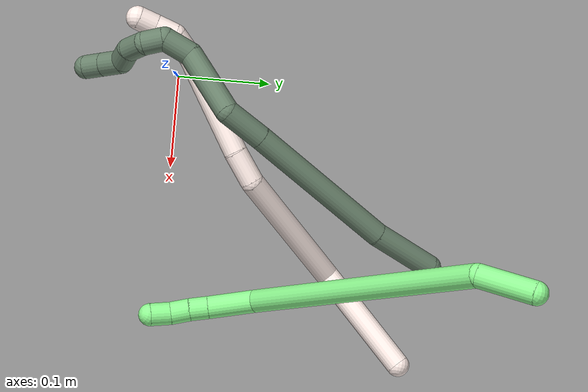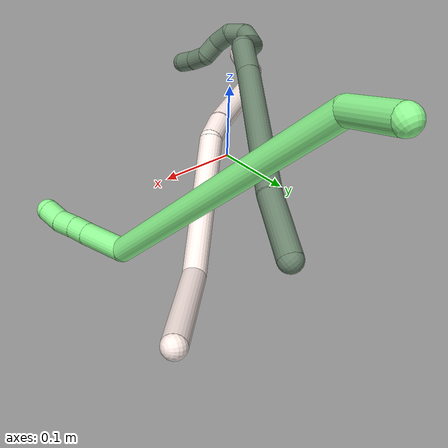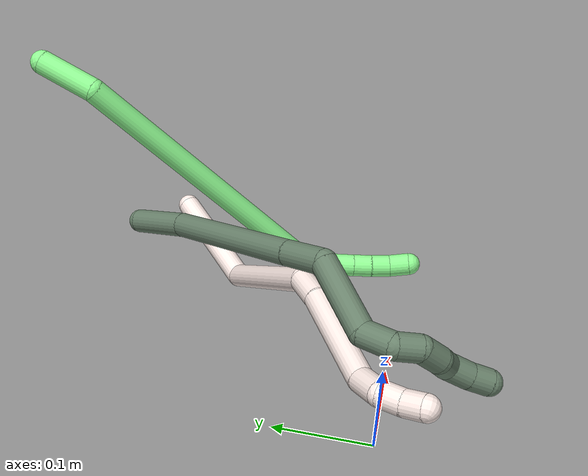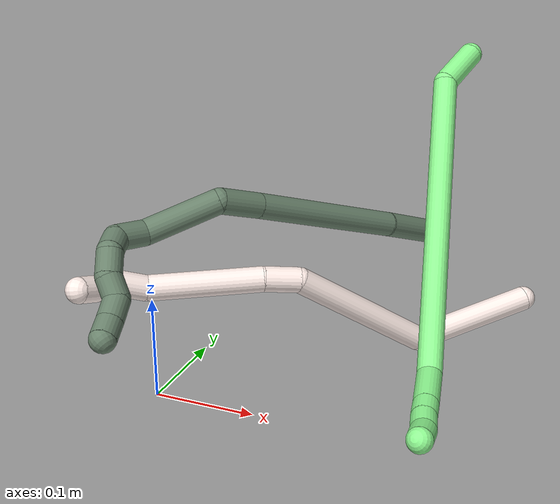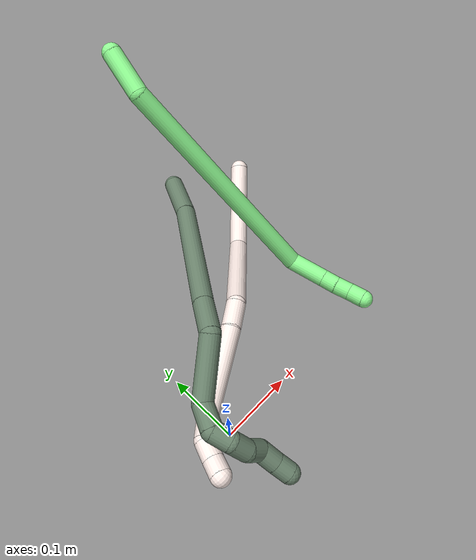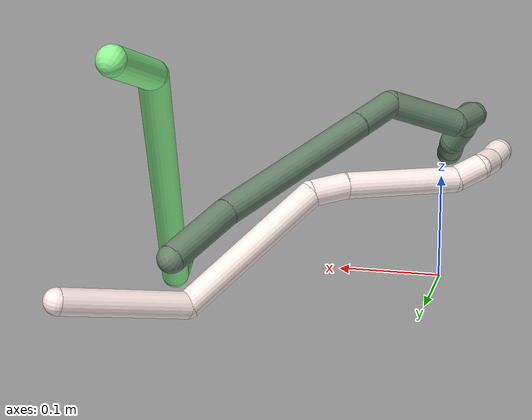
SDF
<sdf version="1.7">
 <world name="default">
  <model name="11">
   <static>0</static>
   <link name="11">
    <collision name="collision-cylinder-e_1_1_4">
     <pose>-0.024633 -0.038244 -0.043238 2.41741 -0.40333 -0.989841</pose>
     <geometry><cylinder><radius>0.0125</radius><length>0.125521</length></cylinder></geometry>
     <surface>
      <friction><ode><mu>1.16</mu><mu2>1.16</mu2><slip1>0</slip1><slip2>0</slip2></ode></friction>
      <contact><ode><kp>1e+06</kp><kd>1</kd><max_vel>0</max_vel><min_depth>0.001</min_depth></ode></contact>
     </surface>
    </collision>
    <visual name="visual-cylinder-e_1_1_4">
     <pose>-0.024633 -0.038244 -0.043238 2.41741 -0.40333 -0.989841</pose>
     <geometry><cylinder><radius>0.0125</radius><length>0.125521</length></cylinder></geometry>
     <material><ambient>1 0.933333 0.909804 1</ambient></material>
    </visual>
    <collision name="collision-cylinder-e_2_4_5">
     <pose>-0.119415 -0.084193 -0.119824 2.91453 -1.11688 -2.78057</pose>
     <geometry><cylinder><radius>0.0125</radius><length>0.156108</length></cylinder></geometry>
     <surface>
      <friction><ode><mu>1.16</mu><mu2>1.16</mu2><slip1>0</slip1><slip2>0</slip2></ode></friction>
      <contact><ode><kp>1e+06</kp><kd>1</kd><max_vel>0</max_vel><min_depth>0.001</min_depth></ode></contact>
     </surface>
    </collision>
    <visual name="visual-cylinder-e_2_4_5">
     <pose>-0.119415 -0.084193 -0.119824 2.91453 -1.11688 -2.78057</pose>
     <geometry><cylinder><radius>0.0125</radius><length>0.156108</length></cylinder></geometry>
     <material><ambient>1 0.933333 0.909804 1</ambient></material>
    </visual>
    <collision name="collision-cylinder-e_3_5_6">
     <pose>-0.20006 -0.09764 -0.166163 2.72538 -0.636365 -2.00141</pose>
     <geometry><cylinder><radius>0.0125</radius><length>0.035321</length></cylinder></geometry>
     <surface>
      <friction><ode><mu>1.16</mu><mu2>1.16</mu2><slip1>0</slip1><slip2>0</slip2></ode></friction>
      <contact><ode><kp>1e+06</kp><kd>1</kd><max_vel>0</max_vel><min_depth>0.001</min_depth></ode></contact>
     </surface>
    </collision>
    <visual name="visual-cylinder-e_3_5_6">
     <pose>-0.20006 -0.09764 -0.166163 2.72538 -0.636365 -2.00141</pose>
     <geometry><cylinder><radius>0.0125</radius><length>0.035321</length></cylinder></geometry>
     <material><ambient>1 0.933333 0.909804 1</ambient></material>
    </visual>
    <collision name="collision-cylinder-e_4_6_7">
     <pose>-0.236167 -0.123463 -0.223817 2.71908 -0.481877 -1.70643</pose>
     <geometry><cylinder><radius>0.0125</radius><length>0.110525</length></cylinder></geometry>
     <surface>
      <friction><ode><mu>1.16</mu><mu2>1.16</mu2><slip1>0</slip1><slip2>0</slip2></ode></friction>
      <contact><ode><kp>1e+06</kp><kd>1</kd><max_vel>0</max_vel><min_depth>0.001</min_depth></ode></contact>
     </surface>
    </collision>
    <visual name="visual-cylinder-e_4_6_7">
     <pose>-0.236167 -0.123463 -0.223817 2.71908 -0.481877 -1.70643</pose>
     <geometry><cylinder><radius>0.0125</radius><length>0.110525</length></cylinder></geometry>
     <material><ambient>1 0.933333 0.909804 1</ambient></material>
    </visual>
    <collision name="collision-cylinder-e_5_7_8">
     <pose>-0.272903 -0.147415 -0.277246 2.7256 -0.859768 -2.27878</pose>
     <geometry><cylinder><radius>0.0125</radius><length>0.029367</length></cylinder></geometry>
     <surface>
      <friction><ode><mu>1.16</mu><mu2>1.16</mu2><slip1>0</slip1><slip2>0</slip2></ode></friction>
      <contact><ode><kp>1e+06</kp><kd>1</kd><max_vel>0</max_vel><min_depth>0.001</min_depth></ode></contact>
     </surface>
    </collision>
    <visual name="visual-cylinder-e_5_7_8">
     <pose>-0.272903 -0.147415 -0.277246 2.7256 -0.859768 -2.27878</pose>
     <geometry><cylinder><radius>0.0125</radius><length>0.029367</length></cylinder></geometry>
     <material><ambient>1 0.933333 0.909804 1</ambient></material>
    </visual>
    <collision name="collision-cylinder-e_6_8_9">
     <pose>-0.291785 -0.159152 -0.288911 1.92397 -0.746687 -1.02383</pose>
     <geometry><cylinder><radius>0.0125</radius><length>0.02284</length></cylinder></geometry>
     <surface>
      <friction><ode><mu>1.16</mu><mu2>1.16</mu2><slip1>0</slip1><slip2>0</slip2></ode></friction>
      <contact><ode><kp>1e+06</kp><kd>1</kd><max_vel>0</max_vel><min_depth>0.001</min_depth></ode></contact>
     </surface>
    </collision>
    <visual name="visual-cylinder-e_6_8_9">
     <pose>-0.291785 -0.159152 -0.288911 1.92397 -0.746687 -1.02383</pose>
     <geometry><cylinder><radius>0.0125</radius><length>0.02284</length></cylinder></geometry>
     <material><ambient>1 0.933333 0.909804 1</ambient></material>
    </visual>
    <collision name="collision-cylinder-e_7_9_2">
     <pose>-0.307688 -0.172777 -0.293723 1.89148 -0.930404 -1.21558</pose>
     <geometry><cylinder><radius>0.0125</radius><length>0.020317</length></cylinder></geometry>
     <surface>
      <friction><ode><mu>1.16</mu><mu2>1.16</mu2><slip1>0</slip1><slip2>0</slip2></ode></friction>
      <contact><ode><kp>1e+06</kp><kd>1</kd><max_vel>0</max_vel><min_depth>0.001</min_depth></ode></contact>
     </surface>
    </collision>
    <visual name="visual-cylinder-e_7_9_2">
     <pose>-0.307688 -0.172777 -0.293723 1.89148 -0.930404 -1.21558</pose>
     <geometry><cylinder><radius>0.0125</radius><length>0.020317</length></cylinder></geometry>
     <material><ambient>1 0.933333 0.909804 1</ambient></material>
    </visual>
    <collision name="collision-sphere-2">
     <pose>-0.315833 -0.178537 -0.295636 0 -0 0</pose>
     <geometry><sphere><radius>0.0125</radius></sphere></geometry>
     <surface>
      <friction><ode><mu>1.16</mu><mu2>1.16</mu2><slip1>0</slip1><slip2>0</slip2></ode></friction>
      <contact><ode><kp>1e+06</kp><kd>1</kd><max_vel>0</max_vel><min_depth>0.001</min_depth></ode></contact>
     </surface>
    </collision>
    <visual name="visual-sphere-2">
     <pose>-0.315833 -0.178537 -0.295636 0 -0 0</pose>
     <geometry><sphere><radius>0.0125</radius></sphere></geometry>
     <material><ambient>1 0.933333 0.909804 1</ambient></material>
    </visual>
    <collision name="collision-sphere-9">
     <pose>-0.299542 -0.167017 -0.29181 0 -0 0</pose>
     <geometry><sphere><radius>0.0125</radius></sphere></geometry>
     <surface>
      <friction><ode><mu>1.16</mu><mu2>1.16</mu2><slip1>0</slip1><slip2>0</slip2></ode></friction>
      <contact><ode><kp>1e+06</kp><kd>1</kd><max_vel>0</max_vel><min_depth>0.001</min_depth></ode></contact>
     </surface>
    </collision>
    <visual name="visual-sphere-9">
     <pose>-0.299542 -0.167017 -0.29181 0 -0 0</pose>
     <geometry><sphere><radius>0.0125</radius></sphere></geometry>
     <material><ambient>1 0.933333 0.909804 1</ambient></material>
    </visual>
    <collision name="collision-sphere-4">
     <pose>-0.049265 -0.076488 -0.086476 0 -0 0</pose>
     <geometry><sphere><radius>0.0125</radius></sphere></geometry>
     <surface>
      <friction><ode><mu>1.16</mu><mu2>1.16</mu2><slip1>0</slip1><slip2>0</slip2></ode></friction>
      <contact><ode><kp>1e+06</kp><kd>1</kd><max_vel>0</max_vel><min_depth>0.001</min_depth></ode></contact>
     </surface>
    </collision>
    <visual name="visual-sphere-4">
     <pose>-0.049265 -0.076488 -0.086476 0 -0 0</pose>
     <geometry><sphere><radius>0.0125</radius></sphere></geometry>
     <material><ambient>1 0.933333 0.909804 1</ambient></material>
    </visual>
    <collision name="collision-sphere-1">
     <geometry><sphere><radius>0.0125</radius></sphere></geometry>
     <surface>
      <friction><ode><mu>1.16</mu><mu2>1.16</mu2><slip1>0</slip1><slip2>0</slip2></ode></friction>
      <contact><ode><kp>1e+06</kp><kd>1</kd><max_vel>0</max_vel><min_depth>0.001</min_depth></ode></contact>
     </surface>
    </collision>
    <visual name="visual-sphere-1">
     <geometry><sphere><radius>0.0125</radius></sphere></geometry>
     <material><ambient>1 0.933333 0.909804 1</ambient></material>
    </visual>
    <collision name="collision-sphere-8">
     <pose>-0.284029 -0.151288 -0.286012 0 -0 0</pose>
     <geometry><sphere><radius>0.0125</radius></sphere></geometry>
     <surface>
      <friction><ode><mu>1.16</mu><mu2>1.16</mu2><slip1>0</slip1><slip2>0</slip2></ode></friction>
      <contact><ode><kp>1e+06</kp><kd>1</kd><max_vel>0</max_vel><min_depth>0.001</min_depth></ode></contact>
     </surface>
    </collision>
    <visual name="visual-sphere-8">
     <pose>-0.284029 -0.151288 -0.286012 0 -0 0</pose>
     <geometry><sphere><radius>0.0125</radius></sphere></geometry>
     <material><ambient>1 0.933333 0.909804 1</ambient></material>
    </visual>
    <collision name="collision-sphere-5">
     <pose>-0.189565 -0.091898 -0.153172 0 -0 0</pose>
     <geometry><sphere><radius>0.0125</radius></sphere></geometry>
     <surface>
      <friction><ode><mu>1.16</mu><mu2>1.16</mu2><slip1>0</slip1><slip2>0</slip2></ode></friction>
      <contact><ode><kp>1e+06</kp><kd>1</kd><max_vel>0</max_vel><min_depth>0.001</min_depth></ode></contact>
     </surface>
    </collision>
    <visual name="visual-sphere-5">
     <pose>-0.189565 -0.091898 -0.153172 0 -0 0</pose>
     <geometry><sphere><radius>0.0125</radius></sphere></geometry>
     <material><ambient>1 0.933333 0.909804 1</ambient></material>
    </visual>
    <collision name="collision-sphere-6">
     <pose>-0.210555 -0.103383 -0.179154 0 -0 0</pose>
     <geometry><sphere><radius>0.0125</radius></sphere></geometry>
     <surface>
      <friction><ode><mu>1.16</mu><mu2>1.16</mu2><slip1>0</slip1><slip2>0</slip2></ode></friction>
      <contact><ode><kp>1e+06</kp><kd>1</kd><max_vel>0</max_vel><min_depth>0.001</min_depth></ode></contact>
     </surface>
    </collision>
    <visual name="visual-sphere-6">
     <pose>-0.210555 -0.103383 -0.179154 0 -0 0</pose>
     <geometry><sphere><radius>0.0125</radius></sphere></geometry>
     <material><ambient>1 0.933333 0.909804 1</ambient></material>
    </visual>
    <collision name="collision-sphere-7">
     <pose>-0.261778 -0.143543 -0.268481 0 -0 0</pose>
     <geometry><sphere><radius>0.0125</radius></sphere></geometry>
     <surface>
      <friction><ode><mu>1.16</mu><mu2>1.16</mu2><slip1>0</slip1><slip2>0</slip2></ode></friction>
      <contact><ode><kp>1e+06</kp><kd>1</kd><max_vel>0</max_vel><min_depth>0.001</min_depth></ode></contact>
     </surface>
    </collision>
    <visual name="visual-sphere-7">
     <pose>-0.261778 -0.143543 -0.268481 0 -0 0</pose>
     <geometry><sphere><radius>0.0125</radius></sphere></geometry>
     <material><ambient>1 0.933333 0.909804 1</ambient></material>
    </visual>
    <inertial>
     <pose>-0.151665 -0.093025 -0.150895 0 -0 0</pose>
     <mass>0.5</mass>
     <inertia>
      <ixx>-0.000378</ixx>
      <ixy>0</ixy>
      <ixz>0</ixz>
      <iyy>2.4e-05</iyy>
      <iyz>0</iyz>
      <izz>0.000578</izz>
     </inertia>
    </inertial>
   </link>
   <pose>0.292224 0.266716 0.034951 1.21534 0.910892 1.21587</pose>
  </model>
  <model name="13">
   <static>0</static>
   <link name="13">
    <collision name="collision-cylinder-e_1_1_4">
     <pose>-0.005231 -0.023541 0.019049 0.890486 -0.171037 -0.081773</pose>
     <geometry><cylinder><radius>0.0125</radius><length>0.061462</length></cylinder></geometry>
     <surface>
      <friction><ode><mu>1.16</mu><mu2>1.16</mu2><slip1>0</slip1><slip2>0</slip2></ode></friction>
      <contact><ode><kp>1e+06</kp><kd>1</kd><max_vel>0</max_vel><min_depth>0.001</min_depth></ode></contact>
     </surface>
    </collision>
    <visual name="visual-cylinder-e_1_1_4">
     <pose>-0.005231 -0.023541 0.019049 0.890486 -0.171037 -0.081773</pose>
     <geometry><cylinder><radius>0.0125</radius><length>0.061462</length></cylinder></geometry>
     <material><ambient>0.564706 0.984314 0.572549 1</ambient></material>
    </visual>
    <collision name="collision-cylinder-e_2_4_5">
     <pose>0.004867 -0.205847 0.059737 1.43533 0.095372 0.08327</pose>
     <geometry><cylinder><radius>0.0125</radius><length>0.321928</length></cylinder></geometry>
     <surface>
      <friction><ode><mu>1.16</mu><mu2>1.16</mu2><slip1>0</slip1><slip2>0</slip2></ode></friction>
      <contact><ode><kp>1e+06</kp><kd>1</kd><max_vel>0</max_vel><min_depth>0.001</min_depth></ode></contact>
     </surface>
    </collision>
    <visual name="visual-cylinder-e_2_4_5">
     <pose>0.004867 -0.205847 0.059737 1.43533 0.095372 0.08327</pose>
     <geometry><cylinder><radius>0.0125</radius><length>0.321928</length></cylinder></geometry>
     <material><ambient>0.564706 0.984314 0.572549 1</ambient></material>
    </visual>
    <collision name="collision-cylinder-e_3_5_6">
     <pose>0.027493 -0.380722 0.100082 0.710984 0.287419 0.107346</pose>
     <geometry><cylinder><radius>0.0125</radius><length>0.051486</length></cylinder></geometry>
     <surface>
      <friction><ode><mu>1.16</mu><mu2>1.16</mu2><slip1>0</slip1><slip2>0</slip2></ode></friction>
      <contact><ode><kp>1e+06</kp><kd>1</kd><max_vel>0</max_vel><min_depth>0.001</min_depth></ode></contact>
     </surface>
    </collision>
    <visual name="visual-cylinder-e_3_5_6">
     <pose>0.027493 -0.380722 0.100082 0.710984 0.287419 0.107346</pose>
     <geometry><cylinder><radius>0.0125</radius><length>0.051486</length></cylinder></geometry>
     <material><ambient>0.564706 0.984314 0.572549 1</ambient></material>
    </visual>
    <collision name="collision-cylinder-e_4_6_7">
     <pose>0.037585 -0.403044 0.126511 0.677405 0.27477 0.097332</pose>
     <geometry><cylinder><radius>0.0125</radius><length>0.020596</length></cylinder></geometry>
     <surface>
      <friction><ode><mu>1.16</mu><mu2>1.16</mu2><slip1>0</slip1><slip2>0</slip2></ode></friction>
      <contact><ode><kp>1e+06</kp><kd>1</kd><max_vel>0</max_vel><min_depth>0.001</min_depth></ode></contact>
     </surface>
    </collision>
    <visual name="visual-cylinder-e_4_6_7">
     <pose>0.037585 -0.403044 0.126511 0.677405 0.27477 0.097332</pose>
     <geometry><cylinder><radius>0.0125</radius><length>0.020596</length></cylinder></geometry>
     <material><ambient>0.564706 0.984314 0.572549 1</ambient></material>
    </visual>
    <collision name="collision-cylinder-e_5_7_8">
     <pose>0.044019 -0.415797 0.142074 0.695271 0.34248 0.125162</pose>
     <geometry><cylinder><radius>0.0125</radius><length>0.021679</length></cylinder></geometry>
     <surface>
      <friction><ode><mu>1.16</mu><mu2>1.16</mu2><slip1>0</slip1><slip2>0</slip2></ode></friction>
      <contact><ode><kp>1e+06</kp><kd>1</kd><max_vel>0</max_vel><min_depth>0.001</min_depth></ode></contact>
     </surface>
    </collision>
    <visual name="visual-cylinder-e_5_7_8">
     <pose>0.044019 -0.415797 0.142074 0.695271 0.34248 0.125162</pose>
     <geometry><cylinder><radius>0.0125</radius><length>0.021679</length></cylinder></geometry>
     <material><ambient>0.564706 0.984314 0.572549 1</ambient></material>
    </visual>
    <collision name="collision-cylinder-e_6_8_2">
     <pose>0.050462 -0.427097 0.159915 0.444166 0.247886 0.056248</pose>
     <geometry><cylinder><radius>0.0125</radius><length>0.022849</length></cylinder></geometry>
     <surface>
      <friction><ode><mu>1.16</mu><mu2>1.16</mu2><slip1>0</slip1><slip2>0</slip2></ode></friction>
      <contact><ode><kp>1e+06</kp><kd>1</kd><max_vel>0</max_vel><min_depth>0.001</min_depth></ode></contact>
     </surface>
    </collision>
    <visual name="visual-cylinder-e_6_8_2">
     <pose>0.050462 -0.427097 0.159915 0.444166 0.247886 0.056248</pose>
     <geometry><cylinder><radius>0.0125</radius><length>0.022849</length></cylinder></geometry>
     <material><ambient>0.564706 0.984314 0.572549 1</ambient></material>
    </visual>
    <collision name="collision-sphere-2">
     <pose>0.053265 -0.431856 0.169915 0 -0 0</pose>
     <geometry><sphere><radius>0.0125</radius></sphere></geometry>
     <surface>
      <friction><ode><mu>1.16</mu><mu2>1.16</mu2><slip1>0</slip1><slip2>0</slip2></ode></friction>
      <contact><ode><kp>1e+06</kp><kd>1</kd><max_vel>0</max_vel><min_depth>0.001</min_depth></ode></contact>
     </surface>
    </collision>
    <visual name="visual-sphere-2">
     <pose>0.053265 -0.431856 0.169915 0 -0 0</pose>
     <geometry><sphere><radius>0.0125</radius></sphere></geometry>
     <material><ambient>0.564706 0.984314 0.572549 1</ambient></material>
    </visual>
    <collision name="collision-sphere-4">
     <pose>-0.010461 -0.047082 0.038097 0 -0 0</pose>
     <geometry><sphere><radius>0.0125</radius></sphere></geometry>
     <surface>
      <friction><ode><mu>1.16</mu><mu2>1.16</mu2><slip1>0</slip1><slip2>0</slip2></ode></friction>
      <contact><ode><kp>1e+06</kp><kd>1</kd><max_vel>0</max_vel><min_depth>0.001</min_depth></ode></contact>
     </surface>
    </collision>
    <visual name="visual-sphere-4">
     <pose>-0.010461 -0.047082 0.038097 0 -0 0</pose>
     <geometry><sphere><radius>0.0125</radius></sphere></geometry>
     <material><ambient>0.564706 0.984314 0.572549 1</ambient></material>
    </visual>
    <collision name="collision-sphere-1">
     <geometry><sphere><radius>0.0125</radius></sphere></geometry>
     <surface>
      <friction><ode><mu>1.16</mu><mu2>1.16</mu2><slip1>0</slip1><slip2>0</slip2></ode></friction>
      <contact><ode><kp>1e+06</kp><kd>1</kd><max_vel>0</max_vel><min_depth>0.001</min_depth></ode></contact>
     </surface>
    </collision>
    <visual name="visual-sphere-1">
     <geometry><sphere><radius>0.0125</radius></sphere></geometry>
     <material><ambient>0.564706 0.984314 0.572549 1</ambient></material>
    </visual>
    <collision name="collision-sphere-8">
     <pose>0.047659 -0.422338 0.149914 0 -0 0</pose>
     <geometry><sphere><radius>0.0125</radius></sphere></geometry>
     <surface>
      <friction><ode><mu>1.16</mu><mu2>1.16</mu2><slip1>0</slip1><slip2>0</slip2></ode></friction>
      <contact><ode><kp>1e+06</kp><kd>1</kd><max_vel>0</max_vel><min_depth>0.001</min_depth></ode></contact>
     </surface>
    </collision>
    <visual name="visual-sphere-8">
     <pose>0.047659 -0.422338 0.149914 0 -0 0</pose>
     <geometry><sphere><radius>0.0125</radius></sphere></geometry>
     <material><ambient>0.564706 0.984314 0.572549 1</ambient></material>
    </visual>
    <collision name="collision-sphere-5">
     <pose>0.020195 -0.364611 0.081376 0 -0 0</pose>
     <geometry><sphere><radius>0.0125</radius></sphere></geometry>
     <surface>
      <friction><ode><mu>1.16</mu><mu2>1.16</mu2><slip1>0</slip1><slip2>0</slip2></ode></friction>
      <contact><ode><kp>1e+06</kp><kd>1</kd><max_vel>0</max_vel><min_depth>0.001</min_depth></ode></contact>
     </surface>
    </collision>
    <visual name="visual-sphere-5">
     <pose>0.020195 -0.364611 0.081376 0 -0 0</pose>
     <geometry><sphere><radius>0.0125</radius></sphere></geometry>
     <material><ambient>0.564706 0.984314 0.572549 1</ambient></material>
    </visual>
    <collision name="collision-sphere-6">
     <pose>0.034791 -0.396832 0.118788 0 -0 0</pose>
     <geometry><sphere><radius>0.0125</radius></sphere></geometry>
     <surface>
      <friction><ode><mu>1.16</mu><mu2>1.16</mu2><slip1>0</slip1><slip2>0</slip2></ode></friction>
      <contact><ode><kp>1e+06</kp><kd>1</kd><max_vel>0</max_vel><min_depth>0.001</min_depth></ode></contact>
     </surface>
    </collision>
    <visual name="visual-sphere-6">
     <pose>0.034791 -0.396832 0.118788 0 -0 0</pose>
     <geometry><sphere><radius>0.0125</radius></sphere></geometry>
     <material><ambient>0.564706 0.984314 0.572549 1</ambient></material>
    </visual>
    <collision name="collision-sphere-7">
     <pose>0.040379 -0.409257 0.134234 0 -0 0</pose>
     <geometry><sphere><radius>0.0125</radius></sphere></geometry>
     <surface>
      <friction><ode><mu>1.16</mu><mu2>1.16</mu2><slip1>0</slip1><slip2>0</slip2></ode></friction>
      <contact><ode><kp>1e+06</kp><kd>1</kd><max_vel>0</max_vel><min_depth>0.001</min_depth></ode></contact>
     </surface>
    </collision>
    <visual name="visual-sphere-7">
     <pose>0.040379 -0.409257 0.134234 0 -0 0</pose>
     <geometry><sphere><radius>0.0125</radius></sphere></geometry>
     <material><ambient>0.564706 0.984314 0.572549 1</ambient></material>
    </visual>
    <inertial>
     <pose>0.011085 -0.228781 0.069788 0 -0 0</pose>
     <mass>0.5</mass>
     <inertia>
      <ixx>0.003045</ixx>
      <ixy>0</ixy>
      <ixz>0</ixz>
      <iyy>0.000624</iyy>
      <iyz>0</iyz>
      <izz>0.002528</izz>
     </inertia>
    </inertial>
   </link>
   <pose>0.192926 0.383595 0.262744 0.97053 -0.181772 -0.075534</pose>
  </model>
  <model name="17">
   <static>0</static>
   <link name="17">
    <collision name="collision-cylinder-e_1_1_4">
     <pose>-0.007414 -0.032967 0.011279 1.24114 -0.20965 -0.15012</pose>
     <geometry><cylinder><radius>0.0125</radius><length>0.071246</length></cylinder></geometry>
     <surface>
      <friction><ode><mu>1.16</mu><mu2>1.16</mu2><slip1>0</slip1><slip2>0</slip2></ode></friction>
      <contact><ode><kp>1e+06</kp><kd>1</kd><max_vel>0</max_vel><min_depth>0.001</min_depth></ode></contact>
     </surface>
    </collision>
    <visual name="visual-cylinder-e_1_1_4">
     <pose>-0.007414 -0.032967 0.011279 1.24114 -0.20965 -0.15012</pose>
     <geometry><cylinder><radius>0.0125</radius><length>0.071246</length></cylinder></geometry>
     <material><ambient>0.415686 0.509804 0.423529 1</ambient></material>
    </visual>
    <collision name="collision-cylinder-e_2_4_5">
     <pose>-0.039452 -0.137998 0.055317 1.14415 -0.301586 -0.195056</pose>
     <geometry><cylinder><radius>0.0125</radius><length>0.165803</length></cylinder></geometry>
     <surface>
      <friction><ode><mu>1.16</mu><mu2>1.16</mu2><slip1>0</slip1><slip2>0</slip2></ode></friction>
      <contact><ode><kp>1e+06</kp><kd>1</kd><max_vel>0</max_vel><min_depth>0.001</min_depth></ode></contact>
     </surface>
    </collision>
    <visual name="visual-cylinder-e_2_4_5">
     <pose>-0.039452 -0.137998 0.055317 1.14415 -0.301586 -0.195056</pose>
     <geometry><cylinder><radius>0.0125</radius><length>0.165803</length></cylinder></geometry>
     <material><ambient>0.415686 0.509804 0.423529 1</ambient></material>
    </visual>
    <collision name="collision-cylinder-e_3_5_6">
     <pose>-0.070671 -0.229784 0.0963 1.17566 -0.299299 -0.200288</pose>
     <geometry><cylinder><radius>0.0125</radius><length>0.044726</length></cylinder></geometry>
     <surface>
      <friction><ode><mu>1.16</mu><mu2>1.16</mu2><slip1>0</slip1><slip2>0</slip2></ode></friction>
      <contact><ode><kp>1e+06</kp><kd>1</kd><max_vel>0</max_vel><min_depth>0.001</min_depth></ode></contact>
     </surface>
    </collision>
    <visual name="visual-cylinder-e_3_5_6">
     <pose>-0.070671 -0.229784 0.0963 1.17566 -0.299299 -0.200288</pose>
     <geometry><cylinder><radius>0.0125</radius><length>0.044726</length></cylinder></geometry>
     <material><ambient>0.415686 0.509804 0.423529 1</ambient></material>
    </visual>
    <collision name="collision-cylinder-e_4_6_7">
     <pose>-0.109422 -0.26672 0.113132 1.1072 -1.0315 -0.674069</pose>
     <geometry><cylinder><radius>0.0125</radius><length>0.074953</length></cylinder></geometry>
     <surface>
      <friction><ode><mu>1.16</mu><mu2>1.16</mu2><slip1>0</slip1><slip2>0</slip2></ode></friction>
      <contact><ode><kp>1e+06</kp><kd>1</kd><max_vel>0</max_vel><min_depth>0.001</min_depth></ode></contact>
     </surface>
    </collision>
    <visual name="visual-cylinder-e_4_6_7">
     <pose>-0.109422 -0.26672 0.113132 1.1072 -1.0315 -0.674069</pose>
     <geometry><cylinder><radius>0.0125</radius><length>0.074953</length></cylinder></geometry>
     <material><ambient>0.415686 0.509804 0.423529 1</ambient></material>
    </visual>
    <collision name="collision-cylinder-e_5_7_8">
     <pose>-0.147993 -0.297981 0.124174 1.39906 -0.422712 -0.357249</pose>
     <geometry><cylinder><radius>0.0125</radius><length>0.031267</length></cylinder></geometry>
     <surface>
      <friction><ode><mu>1.16</mu><mu2>1.16</mu2><slip1>0</slip1><slip2>0</slip2></ode></friction>
      <contact><ode><kp>1e+06</kp><kd>1</kd><max_vel>0</max_vel><min_depth>0.001</min_depth></ode></contact>
     </surface>
    </collision>
    <visual name="visual-cylinder-e_5_7_8">
     <pose>-0.147993 -0.297981 0.124174 1.39906 -0.422712 -0.357249</pose>
     <geometry><cylinder><radius>0.0125</radius><length>0.031267</length></cylinder></geometry>
     <material><ambient>0.415686 0.509804 0.423529 1</ambient></material>
    </visual>
    <collision name="collision-cylinder-e_6_8_9">
     <pose>-0.156424 -0.321148 0.120195 2.18394 -0.179048 -0.342445</pose>
     <geometry><cylinder><radius>0.0125</radius><length>0.022662</length></cylinder></geometry>
     <surface>
      <friction><ode><mu>1.16</mu><mu2>1.16</mu2><slip1>0</slip1><slip2>0</slip2></ode></friction>
      <contact><ode><kp>1e+06</kp><kd>1</kd><max_vel>0</max_vel><min_depth>0.001</min_depth></ode></contact>
     </surface>
    </collision>
    <visual name="visual-cylinder-e_6_8_9">
     <pose>-0.156424 -0.321148 0.120195 2.18394 -0.179048 -0.342445</pose>
     <geometry><cylinder><radius>0.0125</radius><length>0.022662</length></cylinder></geometry>
     <material><ambient>0.415686 0.509804 0.423529 1</ambient></material>
    </visual>
    <collision name="collision-cylinder-e_7_9_10">
     <pose>-0.163947 -0.334814 0.104233 2.697 -0.480002 -1.65016</pose>
     <geometry><cylinder><radius>0.0125</radius><length>0.023842</length></cylinder></geometry>
     <surface>
      <friction><ode><mu>1.16</mu><mu2>1.16</mu2><slip1>0</slip1><slip2>0</slip2></ode></friction>
      <contact><ode><kp>1e+06</kp><kd>1</kd><max_vel>0</max_vel><min_depth>0.001</min_depth></ode></contact>
     </surface>
    </collision>
    <visual name="visual-cylinder-e_7_9_10">
     <pose>-0.163947 -0.334814 0.104233 2.697 -0.480002 -1.65016</pose>
     <geometry><cylinder><radius>0.0125</radius><length>0.023842</length></cylinder></geometry>
     <material><ambient>0.415686 0.509804 0.423529 1</ambient></material>
    </visual>
    <collision name="collision-cylinder-e_8_10_11">
     <pose>-0.172674 -0.339613 0.084173 3.11772 -0.297339 -2.9825</pose>
     <geometry><cylinder><radius>0.0125</radius><length>0.021999</length></cylinder></geometry>
     <surface>
      <friction><ode><mu>1.16</mu><mu2>1.16</mu2><slip1>0</slip1><slip2>0</slip2></ode></friction>
      <contact><ode><kp>1e+06</kp><kd>1</kd><max_vel>0</max_vel><min_depth>0.001</min_depth></ode></contact>
     </surface>
    </collision>
    <visual name="visual-cylinder-e_8_10_11">
     <pose>-0.172674 -0.339613 0.084173 3.11772 -0.297339 -2.9825</pose>
     <geometry><cylinder><radius>0.0125</radius><length>0.021999</length></cylinder></geometry>
     <material><ambient>0.415686 0.509804 0.423529 1</ambient></material>
    </visual>
    <collision name="collision-cylinder-e_9_11_12">
     <pose>-0.181296 -0.347058 0.06613 2.37899 -0.478287 -1.09273</pose>
     <geometry><cylinder><radius>0.0125</radius><length>0.02346</length></cylinder></geometry>
     <surface>
      <friction><ode><mu>1.16</mu><mu2>1.16</mu2><slip1>0</slip1><slip2>0</slip2></ode></friction>
      <contact><ode><kp>1e+06</kp><kd>1</kd><max_vel>0</max_vel><min_depth>0.001</min_depth></ode></contact>
     </surface>
    </collision>
    <visual name="visual-cylinder-e_9_11_12">
     <pose>-0.181296 -0.347058 0.06613 2.37899 -0.478287 -1.09273</pose>
     <geometry><cylinder><radius>0.0125</radius><length>0.02346</length></cylinder></geometry>
     <material><ambient>0.415686 0.509804 0.423529 1</ambient></material>
    </visual>
    <collision name="collision-cylinder-e_10_12_2">
     <pose>-0.190449 -0.361241 0.052479 2.29008 -0.384059 -0.810043</pose>
     <geometry><cylinder><radius>0.0125</radius><length>0.020043</length></cylinder></geometry>
     <surface>
      <friction><ode><mu>1.16</mu><mu2>1.16</mu2><slip1>0</slip1><slip2>0</slip2></ode></friction>
      <contact><ode><kp>1e+06</kp><kd>1</kd><max_vel>0</max_vel><min_depth>0.001</min_depth></ode></contact>
     </surface>
    </collision>
    <visual name="visual-cylinder-e_10_12_2">
     <pose>-0.190449 -0.361241 0.052479 2.29008 -0.384059 -0.810043</pose>
     <geometry><cylinder><radius>0.0125</radius><length>0.020043</length></cylinder></geometry>
     <material><ambient>0.415686 0.509804 0.423529 1</ambient></material>
    </visual>
    <collision name="collision-sphere-2">
     <pose>-0.194204 -0.368231 0.046358 0 -0 0</pose>
     <geometry><sphere><radius>0.0125</radius></sphere></geometry>
     <surface>
      <friction><ode><mu>1.16</mu><mu2>1.16</mu2><slip1>0</slip1><slip2>0</slip2></ode></friction>
      <contact><ode><kp>1e+06</kp><kd>1</kd><max_vel>0</max_vel><min_depth>0.001</min_depth></ode></contact>
     </surface>
    </collision>
    <visual name="visual-sphere-2">
     <pose>-0.194204 -0.368231 0.046358 0 -0 0</pose>
     <geometry><sphere><radius>0.0125</radius></sphere></geometry>
     <material><ambient>0.415686 0.509804 0.423529 1</ambient></material>
    </visual>
    <collision name="collision-sphere-12">
     <pose>-0.186695 -0.354252 0.058601 0 -0 0</pose>
     <geometry><sphere><radius>0.0125</radius></sphere></geometry>
     <surface>
      <friction><ode><mu>1.16</mu><mu2>1.16</mu2><slip1>0</slip1><slip2>0</slip2></ode></friction>
      <contact><ode><kp>1e+06</kp><kd>1</kd><max_vel>0</max_vel><min_depth>0.001</min_depth></ode></contact>
     </surface>
    </collision>
    <visual name="visual-sphere-12">
     <pose>-0.186695 -0.354252 0.058601 0 -0 0</pose>
     <geometry><sphere><radius>0.0125</radius></sphere></geometry>
     <material><ambient>0.415686 0.509804 0.423529 1</ambient></material>
    </visual>
    <collision name="collision-sphere-11">
     <pose>-0.175897 -0.339864 0.07366 0 -0 0</pose>
     <geometry><sphere><radius>0.0125</radius></sphere></geometry>
     <surface>
      <friction><ode><mu>1.16</mu><mu2>1.16</mu2><slip1>0</slip1><slip2>0</slip2></ode></friction>
      <contact><ode><kp>1e+06</kp><kd>1</kd><max_vel>0</max_vel><min_depth>0.001</min_depth></ode></contact>
     </surface>
    </collision>
    <visual name="visual-sphere-11">
     <pose>-0.175897 -0.339864 0.07366 0 -0 0</pose>
     <geometry><sphere><radius>0.0125</radius></sphere></geometry>
     <material><ambient>0.415686 0.509804 0.423529 1</ambient></material>
    </visual>
    <collision name="collision-sphere-10">
     <pose>-0.169452 -0.339362 0.094687 0 -0 0</pose>
     <geometry><sphere><radius>0.0125</radius></sphere></geometry>
     <surface>
      <friction><ode><mu>1.16</mu><mu2>1.16</mu2><slip1>0</slip1><slip2>0</slip2></ode></friction>
      <contact><ode><kp>1e+06</kp><kd>1</kd><max_vel>0</max_vel><min_depth>0.001</min_depth></ode></contact>
     </surface>
    </collision>
    <visual name="visual-sphere-10">
     <pose>-0.169452 -0.339362 0.094687 0 -0 0</pose>
     <geometry><sphere><radius>0.0125</radius></sphere></geometry>
     <material><ambient>0.415686 0.509804 0.423529 1</ambient></material>
    </visual>
    <collision name="collision-sphere-9">
     <pose>-0.158442 -0.330266 0.113779 0 -0 0</pose>
     <geometry><sphere><radius>0.0125</radius></sphere></geometry>
     <surface>
      <friction><ode><mu>1.16</mu><mu2>1.16</mu2><slip1>0</slip1><slip2>0</slip2></ode></friction>
      <contact><ode><kp>1e+06</kp><kd>1</kd><max_vel>0</max_vel><min_depth>0.001</min_depth></ode></contact>
     </surface>
    </collision>
    <visual name="visual-sphere-9">
     <pose>-0.158442 -0.330266 0.113779 0 -0 0</pose>
     <geometry><sphere><radius>0.0125</radius></sphere></geometry>
     <material><ambient>0.415686 0.509804 0.423529 1</ambient></material>
    </visual>
    <collision name="collision-sphere-4">
     <pose>-0.014828 -0.065934 0.022559 0 -0 0</pose>
     <geometry><sphere><radius>0.0125</radius></sphere></geometry>
     <surface>
      <friction><ode><mu>1.16</mu><mu2>1.16</mu2><slip1>0</slip1><slip2>0</slip2></ode></friction>
      <contact><ode><kp>1e+06</kp><kd>1</kd><max_vel>0</max_vel><min_depth>0.001</min_depth></ode></contact>
     </surface>
    </collision>
    <visual name="visual-sphere-4">
     <pose>-0.014828 -0.065934 0.022559 0 -0 0</pose>
     <geometry><sphere><radius>0.0125</radius></sphere></geometry>
     <material><ambient>0.415686 0.509804 0.423529 1</ambient></material>
    </visual>
    <collision name="collision-sphere-1">
     <geometry><sphere><radius>0.0125</radius></sphere></geometry>
     <surface>
      <friction><ode><mu>1.16</mu><mu2>1.16</mu2><slip1>0</slip1><slip2>0</slip2></ode></friction>
      <contact><ode><kp>1e+06</kp><kd>1</kd><max_vel>0</max_vel><min_depth>0.001</min_depth></ode></contact>
     </surface>
    </collision>
    <visual name="visual-sphere-1">
     <geometry><sphere><radius>0.0125</radius></sphere></geometry>
     <material><ambient>0.415686 0.509804 0.423529 1</ambient></material>
    </visual>
    <collision name="collision-sphere-8">
     <pose>-0.154406 -0.312029 0.126611 0 -0 0</pose>
     <geometry><sphere><radius>0.0125</radius></sphere></geometry>
     <surface>
      <friction><ode><mu>1.16</mu><mu2>1.16</mu2><slip1>0</slip1><slip2>0</slip2></ode></friction>
      <contact><ode><kp>1e+06</kp><kd>1</kd><max_vel>0</max_vel><min_depth>0.001</min_depth></ode></contact>
     </surface>
    </collision>
    <visual name="visual-sphere-8">
     <pose>-0.154406 -0.312029 0.126611 0 -0 0</pose>
     <geometry><sphere><radius>0.0125</radius></sphere></geometry>
     <material><ambient>0.415686 0.509804 0.423529 1</ambient></material>
    </visual>
    <collision name="collision-sphere-5">
     <pose>-0.064077 -0.210061 0.088075 0 -0 0</pose>
     <geometry><sphere><radius>0.0125</radius></sphere></geometry>
     <surface>
      <friction><ode><mu>1.16</mu><mu2>1.16</mu2><slip1>0</slip1><slip2>0</slip2></ode></friction>
      <contact><ode><kp>1e+06</kp><kd>1</kd><max_vel>0</max_vel><min_depth>0.001</min_depth></ode></contact>
     </surface>
    </collision>
    <visual name="visual-sphere-5">
     <pose>-0.064077 -0.210061 0.088075 0 -0 0</pose>
     <geometry><sphere><radius>0.0125</radius></sphere></geometry>
     <material><ambient>0.415686 0.509804 0.423529 1</ambient></material>
    </visual>
    <collision name="collision-sphere-6">
     <pose>-0.077264 -0.249506 0.104526 0 -0 0</pose>
     <geometry><sphere><radius>0.0125</radius></sphere></geometry>
     <surface>
      <friction><ode><mu>1.16</mu><mu2>1.16</mu2><slip1>0</slip1><slip2>0</slip2></ode></friction>
      <contact><ode><kp>1e+06</kp><kd>1</kd><max_vel>0</max_vel><min_depth>0.001</min_depth></ode></contact>
     </surface>
    </collision>
    <visual name="visual-sphere-6">
     <pose>-0.077264 -0.249506 0.104526 0 -0 0</pose>
     <geometry><sphere><radius>0.0125</radius></sphere></geometry>
     <material><ambient>0.415686 0.509804 0.423529 1</ambient></material>
    </visual>
    <collision name="collision-sphere-7">
     <pose>-0.141579 -0.283934 0.121738 0 -0 0</pose>
     <geometry><sphere><radius>0.0125</radius></sphere></geometry>
     <surface>
      <friction><ode><mu>1.16</mu><mu2>1.16</mu2><slip1>0</slip1><slip2>0</slip2></ode></friction>
      <contact><ode><kp>1e+06</kp><kd>1</kd><max_vel>0</max_vel><min_depth>0.001</min_depth></ode></contact>
     </surface>
    </collision>
    <visual name="visual-sphere-7">
     <pose>-0.141579 -0.283934 0.121738 0 -0 0</pose>
     <geometry><sphere><radius>0.0125</radius></sphere></geometry>
     <material><ambient>0.415686 0.509804 0.423529 1</ambient></material>
    </visual>
    <inertial>
     <pose>-0.084763 -0.205857 0.072617 0 -0 0</pose>
     <mass>0.5</mass>
     <inertia>
      <ixx>0.000311</ixx>
      <ixy>0</ixy>
      <ixz>0</ixz>
      <iyy>0.000101</iyy>
      <iyz>0</iyz>
      <izz>0.000565</izz>
     </inertia>
    </inertial>
   </link>
   <pose>0.18193 0.288111 0.086592 -0.546206 -0.811407 0.365412</pose>
  </model>
 </world>
</sdf>
